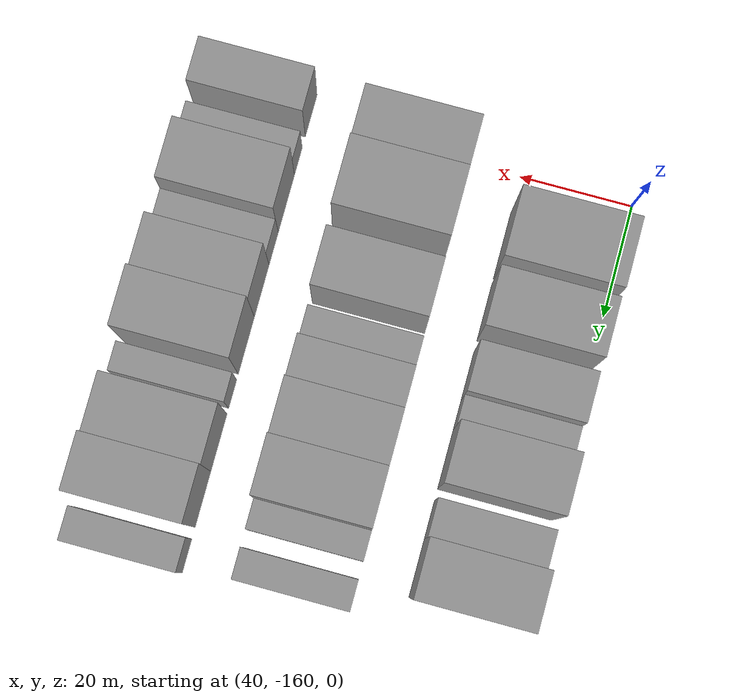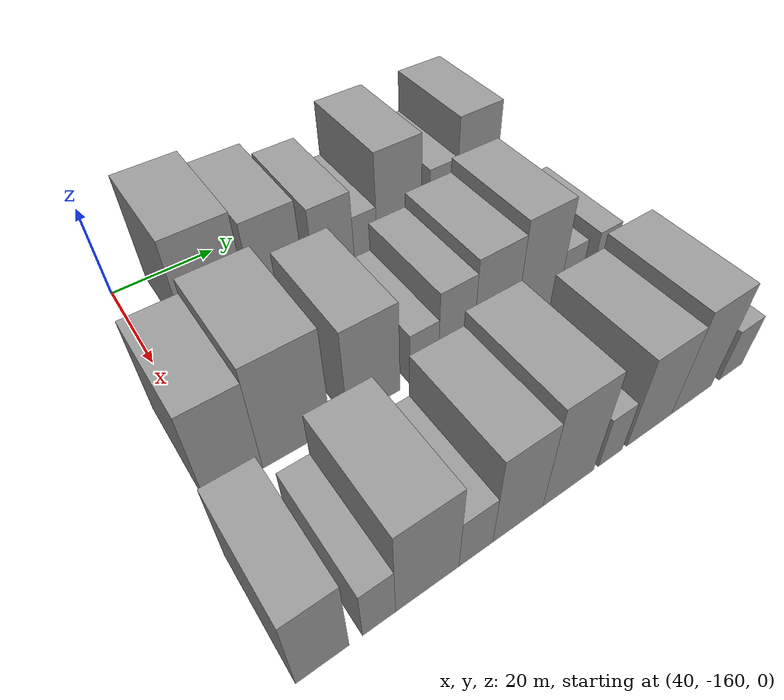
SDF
<sdf version="1.6">
 <world name="default">
  <model name="building_16">
   <static>1</static>
   <pose>50.0000 -147.3587 0 0.000000 0.000000 0.000000</pose>
   <link name="link">
    <pose>0 0 12.00 0 0 0</pose>
    <collision name="collision"><geometry><box><size>20.0000 11.9244 24.0000</size></box></geometry></collision>
    <visual name="visual">
     <cast_shadows>0</cast_shadows>
     <geometry><box><size>20.0000 11.9244 24.0000</size></box></geometry>
     <material>
      <script>
       <uri>model://grey_wall/materials/scripts</uri>
       <uri>model://grey_wall/materials/textures</uri>
       <name>vrc/grey_wall</name>
      </script>
     </material>
    </visual>
   </link>
  </model>
  <model name="building_17">
   <static>1</static>
   <pose>50.0000 -135.2975 0 0.000000 0.000000 0.000000</pose>
   <link name="link">
    <pose>0 0 10.50 0 0 0</pose>
    <collision name="collision"><geometry><box><size>20.0000 10.1980 21.0000</size></box></geometry></collision>
    <visual name="visual">
     <cast_shadows>0</cast_shadows>
     <geometry><box><size>20.0000 10.1980 21.0000</size></box></geometry>
     <material>
      <script>
       <uri>model://grey_wall/materials/scripts</uri>
       <uri>model://grey_wall/materials/textures</uri>
       <name>vrc/grey_wall</name>
      </script>
     </material>
    </visual>
   </link>
  </model>
  <model name="building_18">
   <static>1</static>
   <pose>50.0000 -123.8516 0 0.000000 0.000000 0.000000</pose>
   <link name="link">
    <pose>0 0 9.00 0 0 0</pose>
    <collision name="collision"><geometry><box><size>20.0000 8.6937 18.0000</size></box></geometry></collision>
    <visual name="visual">
     <cast_shadows>0</cast_shadows>
     <geometry><box><size>20.0000 8.6937 18.0000</size></box></geometry>
     <material>
      <script>
       <uri>model://grey_wall/materials/scripts</uri>
       <uri>model://grey_wall/materials/textures</uri>
       <name>vrc/grey_wall</name>
      </script>
     </material>
    </visual>
   </link>
  </model>
  <model name="building_19">
   <static>1</static>
   <pose>50.0000 -116.8912 0 0.000000 0.000000 0.000000</pose>
   <link name="link">
    <pose>0 0 6.00 0 0 0</pose>
    <collision name="collision"><geometry><box><size>20.0000 5.2271 12.0000</size></box></geometry></collision>
    <visual name="visual">
     <cast_shadows>0</cast_shadows>
     <geometry><box><size>20.0000 5.2271 12.0000</size></box></geometry>
     <material>
      <script>
       <uri>model://grey_wall/materials/scripts</uri>
       <uri>model://grey_wall/materials/textures</uri>
       <name>vrc/grey_wall</name>
      </script>
     </material>
    </visual>
   </link>
  </model>
  <model name="building_20">
   <static>1</static>
   <pose>50.0000 -109.0823 0 0.000000 0.000000 0.000000</pose>
   <link name="link">
    <pose>0 0 12.00 0 0 0</pose>
    <collision name="collision"><geometry><box><size>20.0000 10.3908 24.0000</size></box></geometry></collision>
    <visual name="visual">
     <cast_shadows>0</cast_shadows>
     <geometry><box><size>20.0000 10.3908 24.0000</size></box></geometry>
     <material>
      <script>
       <uri>model://grey_wall/materials/scripts</uri>
       <uri>model://grey_wall/materials/textures</uri>
       <name>vrc/grey_wall</name>
      </script>
     </material>
    </visual>
   </link>
  </model>
  <model name="building_21">
   <static>1</static>
   <pose>50.0000 -98.5561 0 0.000000 0.000000 0.000000</pose>
   <link name="link">
    <pose>0 0 7.50 0 0 0</pose>
    <collision name="collision"><geometry><box><size>20.0000 6.6615 15.0000</size></box></geometry></collision>
    <visual name="visual">
     <cast_shadows>0</cast_shadows>
     <geometry><box><size>20.0000 6.6615 15.0000</size></box></geometry>
     <material>
      <script>
       <uri>model://grey_wall/materials/scripts</uri>
       <uri>model://grey_wall/materials/textures</uri>
       <name>vrc/grey_wall</name>
      </script>
     </material>
    </visual>
   </link>
  </model>
  <model name="building_22">
   <static>1</static>
   <pose>50.0000 -90.1369 0 0.000000 0.000000 0.000000</pose>
   <link name="link">
    <pose>0 0 12.00 0 0 0</pose>
    <collision name="collision"><geometry><box><size>20.0000 10.1769 24.0000</size></box></geometry></collision>
    <visual name="visual">
     <cast_shadows>0</cast_shadows>
     <geometry><box><size>20.0000 10.1769 24.0000</size></box></geometry>
     <material>
      <script>
       <uri>model://grey_wall/materials/scripts</uri>
       <uri>model://grey_wall/materials/textures</uri>
       <name>vrc/grey_wall</name>
      </script>
     </material>
    </visual>
   </link>
  </model>
  <model name="building_84">
   <static>1</static>
   <pose>79.0000 -158.8651 0 0.000000 0.000000 0.000000</pose>
   <link name="link">
    <pose>0 0 10.50 0 0 0</pose>
    <collision name="collision"><geometry><box><size>20.0000 9.3723 21.0000</size></box></geometry></collision>
    <visual name="visual">
     <cast_shadows>0</cast_shadows>
     <geometry><box><size>20.0000 9.3723 21.0000</size></box></geometry>
     <material>
      <script>
       <uri>model://grey_wall/materials/scripts</uri>
       <uri>model://grey_wall/materials/textures</uri>
       <name>vrc/grey_wall</name>
      </script>
     </material>
    </visual>
   </link>
  </model>
  <model name="building_85">
   <static>1</static>
   <pose>79.0000 -148.2114 0 0.000000 0.000000 0.000000</pose>
   <link name="link">
    <pose>0 0 12.00 0 0 0</pose>
    <collision name="collision"><geometry><box><size>20.0000 11.9352 24.0000</size></box></geometry></collision>
    <visual name="visual">
     <cast_shadows>0</cast_shadows>
     <geometry><box><size>20.0000 11.9352 24.0000</size></box></geometry>
     <material>
      <script>
       <uri>model://grey_wall/materials/scripts</uri>
       <uri>model://grey_wall/materials/textures</uri>
       <name>vrc/grey_wall</name>
      </script>
     </material>
    </visual>
   </link>
  </model>
  <model name="building_86">
   <static>1</static>
   <pose>79.0000 -134.1764 0 0.000000 0.000000 0.000000</pose>
   <link name="link">
    <pose>0 0 10.50 0 0 0</pose>
    <collision name="collision"><geometry><box><size>20.0000 10.1347 21.0000</size></box></geometry></collision>
    <visual name="visual">
     <cast_shadows>0</cast_shadows>
     <geometry><box><size>20.0000 10.1347 21.0000</size></box></geometry>
     <material>
      <script>
       <uri>model://grey_wall/materials/scripts</uri>
       <uri>model://grey_wall/materials/textures</uri>
       <name>vrc/grey_wall</name>
      </script>
     </material>
    </visual>
   </link>
  </model>
  <model name="building_87">
   <static>1</static>
   <pose>79.0000 -124.2427 0 0.000000 0.000000 0.000000</pose>
   <link name="link">
    <pose>0 0 6.00 0 0 0</pose>
    <collision name="collision"><geometry><box><size>20.0000 5.7327 12.0000</size></box></geometry></collision>
    <visual name="visual">
     <cast_shadows>0</cast_shadows>
     <geometry><box><size>20.0000 5.7327 12.0000</size></box></geometry>
     <material>
      <script>
       <uri>model://grey_wall/materials/scripts</uri>
       <uri>model://grey_wall/materials/textures</uri>
       <name>vrc/grey_wall</name>
      </script>
     </material>
    </visual>
   </link>
  </model>
  <model name="building_88">
   <static>1</static>
   <pose>79.0000 -117.6723 0 0.000000 0.000000 0.000000</pose>
   <link name="link">
    <pose>0 0 9.00 0 0 0</pose>
    <collision name="collision"><geometry><box><size>20.0000 7.4080 18.0000</size></box></geometry></collision>
    <visual name="visual">
     <cast_shadows>0</cast_shadows>
     <geometry><box><size>20.0000 7.4080 18.0000</size></box></geometry>
     <material>
      <script>
       <uri>model://grey_wall/materials/scripts</uri>
       <uri>model://grey_wall/materials/textures</uri>
       <name>vrc/grey_wall</name>
      </script>
     </material>
    </visual>
   </link>
  </model>
  <model name="building_89">
   <static>1</static>
   <pose>79.0000 -109.0945 0 0.000000 0.000000 0.000000</pose>
   <link name="link">
    <pose>0 0 10.50 0 0 0</pose>
    <collision name="collision"><geometry><box><size>20.0000 9.7476 21.0000</size></box></geometry></collision>
    <visual name="visual">
     <cast_shadows>0</cast_shadows>
     <geometry><box><size>20.0000 9.7476 21.0000</size></box></geometry>
     <material>
      <script>
       <uri>model://grey_wall/materials/scripts</uri>
       <uri>model://grey_wall/materials/textures</uri>
       <name>vrc/grey_wall</name>
      </script>
     </material>
    </visual>
   </link>
  </model>
  <model name="building_90">
   <static>1</static>
   <pose>79.0000 -99.1103 0 0.000000 0.000000 0.000000</pose>
   <link name="link">
    <pose>0 0 12.00 0 0 0</pose>
    <collision name="collision"><geometry><box><size>20.0000 10.2208 24.0000</size></box></geometry></collision>
    <visual name="visual">
     <cast_shadows>0</cast_shadows>
     <geometry><box><size>20.0000 10.2208 24.0000</size></box></geometry>
     <material>
      <script>
       <uri>model://grey_wall/materials/scripts</uri>
       <uri>model://grey_wall/materials/textures</uri>
       <name>vrc/grey_wall</name>
      </script>
     </material>
    </visual>
   </link>
  </model>
  <model name="building_91">
   <static>1</static>
   <pose>79.0000 -91.3830 0 0.000000 0.000000 0.000000</pose>
   <link name="link">
    <pose>0 0 6.00 0 0 0</pose>
    <collision name="collision"><geometry><box><size>20.0000 5.2338 12.0000</size></box></geometry></collision>
    <visual name="visual">
     <cast_shadows>0</cast_shadows>
     <geometry><box><size>20.0000 5.2338 12.0000</size></box></geometry>
     <material>
      <script>
       <uri>model://grey_wall/materials/scripts</uri>
       <uri>model://grey_wall/materials/textures</uri>
       <name>vrc/grey_wall</name>
      </script>
     </material>
    </visual>
   </link>
  </model>
  <model name="building_92">
   <static>1</static>
   <pose>79.0000 -83.0625 0 0.000000 0.000000 0.000000</pose>
   <link name="link">
    <pose>0 0 6.00 0 0 0</pose>
    <collision name="collision"><geometry><box><size>20.0000 5.4072 12.0000</size></box></geometry></collision>
    <visual name="visual">
     <cast_shadows>0</cast_shadows>
     <geometry><box><size>20.0000 5.4072 12.0000</size></box></geometry>
     <material>
      <script>
       <uri>model://grey_wall/materials/scripts</uri>
       <uri>model://grey_wall/materials/textures</uri>
       <name>vrc/grey_wall</name>
      </script>
     </material>
    </visual>
   </link>
  </model>
  <model name="building_156">
   <static>1</static>
   <pose>108.0000 -160.9435 0 0.000000 0.000000 0.000000</pose>
   <link name="link">
    <pose>0 0 9.00 0 0 0</pose>
    <collision name="collision"><geometry><box><size>20.0000 7.7460 18.0000</size></box></geometry></collision>
    <visual name="visual">
     <cast_shadows>0</cast_shadows>
     <geometry><box><size>20.0000 7.7460 18.0000</size></box></geometry>
     <material>
      <script>
       <uri>model://grey_wall/materials/scripts</uri>
       <uri>model://grey_wall/materials/textures</uri>
       <name>vrc/grey_wall</name>
      </script>
     </material>
    </visual>
   </link>
  </model>
  <model name="building_157">
   <static>1</static>
   <pose>108.0000 -152.5189 0 0.000000 0.000000 0.000000</pose>
   <link name="link">
    <pose>0 0 6.00 0 0 0</pose>
    <collision name="collision"><geometry><box><size>20.0000 5.1032 12.0000</size></box></geometry></collision>
    <visual name="visual">
     <cast_shadows>0</cast_shadows>
     <geometry><box><size>20.0000 5.1032 12.0000</size></box></geometry>
     <material>
      <script>
       <uri>model://grey_wall/materials/scripts</uri>
       <uri>model://grey_wall/materials/textures</uri>
       <name>vrc/grey_wall</name>
      </script>
     </material>
    </visual>
   </link>
  </model>
  <model name="building_158">
   <static>1</static>
   <pose>108.0000 -144.7410 0 0.000000 0.000000 0.000000</pose>
   <link name="link">
    <pose>0 0 10.50 0 0 0</pose>
    <collision name="collision"><geometry><box><size>20.0000 10.4527 21.0000</size></box></geometry></collision>
    <visual name="visual">
     <cast_shadows>0</cast_shadows>
     <geometry><box><size>20.0000 10.4527 21.0000</size></box></geometry>
     <material>
      <script>
       <uri>model://grey_wall/materials/scripts</uri>
       <uri>model://grey_wall/materials/textures</uri>
       <name>vrc/grey_wall</name>
      </script>
     </material>
    </visual>
   </link>
  </model>
  <model name="building_159">
   <static>1</static>
   <pose>108.0000 -136.5332 0 0.000000 0.000000 0.000000</pose>
   <link name="link">
    <pose>0 0 6.00 0 0 0</pose>
    <collision name="collision"><geometry><box><size>20.0000 5.9628 12.0000</size></box></geometry></collision>
    <visual name="visual">
     <cast_shadows>0</cast_shadows>
     <geometry><box><size>20.0000 5.9628 12.0000</size></box></geometry>
     <material>
      <script>
       <uri>model://grey_wall/materials/scripts</uri>
       <uri>model://grey_wall/materials/textures</uri>
       <name>vrc/grey_wall</name>
      </script>
     </material>
    </visual>
   </link>
  </model>
  <model name="building_160">
   <static>1</static>
   <pose>108.0000 -128.8694 0 0.000000 0.000000 0.000000</pose>
   <link name="link">
    <pose>0 0 10.50 0 0 0</pose>
    <collision name="collision"><geometry><box><size>20.0000 9.3649 21.0000</size></box></geometry></collision>
    <visual name="visual">
     <cast_shadows>0</cast_shadows>
     <geometry><box><size>20.0000 9.3649 21.0000</size></box></geometry>
     <material>
      <script>
       <uri>model://grey_wall/materials/scripts</uri>
       <uri>model://grey_wall/materials/textures</uri>
       <name>vrc/grey_wall</name>
      </script>
     </material>
    </visual>
   </link>
  </model>
  <model name="building_161">
   <static>1</static>
   <pose>108.0000 -119.0580 0 0.000000 0.000000 0.000000</pose>
   <link name="link">
    <pose>0 0 12.00 0 0 0</pose>
    <collision name="collision"><geometry><box><size>20.0000 10.2579 24.0000</size></box></geometry></collision>
    <visual name="visual">
     <cast_shadows>0</cast_shadows>
     <geometry><box><size>20.0000 10.2579 24.0000</size></box></geometry>
     <material>
      <script>
       <uri>model://grey_wall/materials/scripts</uri>
       <uri>model://grey_wall/materials/textures</uri>
       <name>vrc/grey_wall</name>
      </script>
     </material>
    </visual>
   </link>
  </model>
  <model name="building_162">
   <static>1</static>
   <pose>108.0000 -110.3837 0 0.000000 0.000000 0.000000</pose>
   <link name="link">
    <pose>0 0 6.00 0 0 0</pose>
    <collision name="collision"><geometry><box><size>20.0000 5.0906 12.0000</size></box></geometry></collision>
    <visual name="visual">
     <cast_shadows>0</cast_shadows>
     <geometry><box><size>20.0000 5.0906 12.0000</size></box></geometry>
     <material>
      <script>
       <uri>model://grey_wall/materials/scripts</uri>
       <uri>model://grey_wall/materials/textures</uri>
       <name>vrc/grey_wall</name>
      </script>
     </material>
    </visual>
   </link>
  </model>
  <model name="building_163">
   <static>1</static>
   <pose>108.0000 -101.7520 0 0.000000 0.000000 0.000000</pose>
   <link name="link">
    <pose>0 0 10.50 0 0 0</pose>
    <collision name="collision"><geometry><box><size>20.0000 10.1727 21.0000</size></box></geometry></collision>
    <visual name="visual">
     <cast_shadows>0</cast_shadows>
     <geometry><box><size>20.0000 10.1727 21.0000</size></box></geometry>
     <material>
      <script>
       <uri>model://grey_wall/materials/scripts</uri>
       <uri>model://grey_wall/materials/textures</uri>
       <name>vrc/grey_wall</name>
      </script>
     </material>
    </visual>
   </link>
  </model>
  <model name="building_164">
   <static>1</static>
   <pose>108.0000 -91.7603 0 0.000000 0.000000 0.000000</pose>
   <link name="link">
    <pose>0 0 12.00 0 0 0</pose>
    <collision name="collision"><geometry><box><size>20.0000 9.8108 24.0000</size></box></geometry></collision>
    <visual name="visual">
     <cast_shadows>0</cast_shadows>
     <geometry><box><size>20.0000 9.8108 24.0000</size></box></geometry>
     <material>
      <script>
       <uri>model://grey_wall/materials/scripts</uri>
       <uri>model://grey_wall/materials/textures</uri>
       <name>vrc/grey_wall</name>
      </script>
     </material>
    </visual>
   </link>
  </model>
  <model name="building_165">
   <static>1</static>
   <pose>108.0000 -81.9226 0 0.000000 0.000000 0.000000</pose>
   <link name="link">
    <pose>0 0 6.00 0 0 0</pose>
    <collision name="collision"><geometry><box><size>20.0000 5.8647 12.0000</size></box></geometry></collision>
    <visual name="visual">
     <cast_shadows>0</cast_shadows>
     <geometry><box><size>20.0000 5.8647 12.0000</size></box></geometry>
     <material>
      <script>
       <uri>model://grey_wall/materials/scripts</uri>
       <uri>model://grey_wall/materials/textures</uri>
       <name>vrc/grey_wall</name>
      </script>
     </material>
    </visual>
   </link>
  </model>
 </world>
</sdf>
